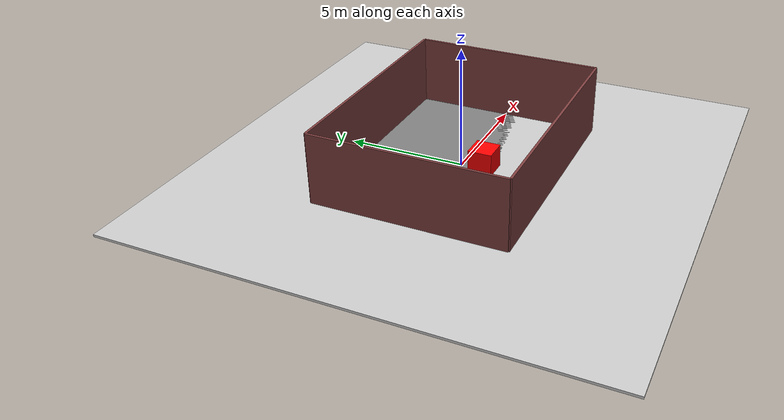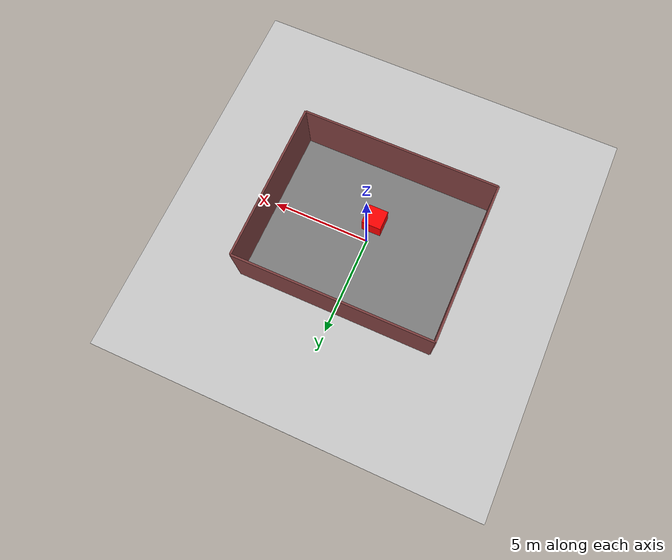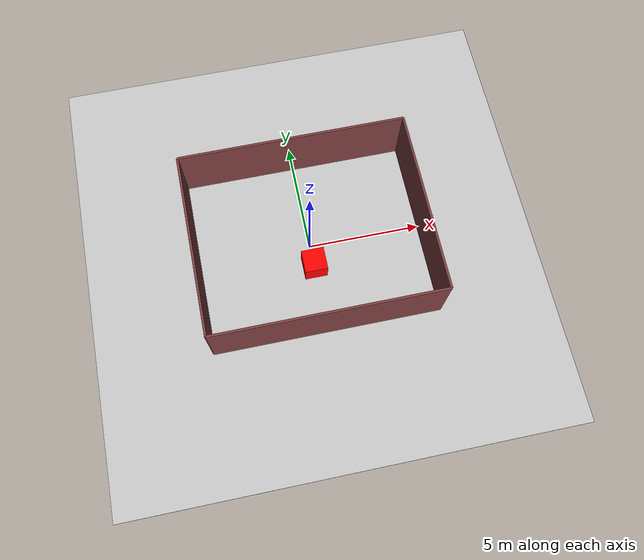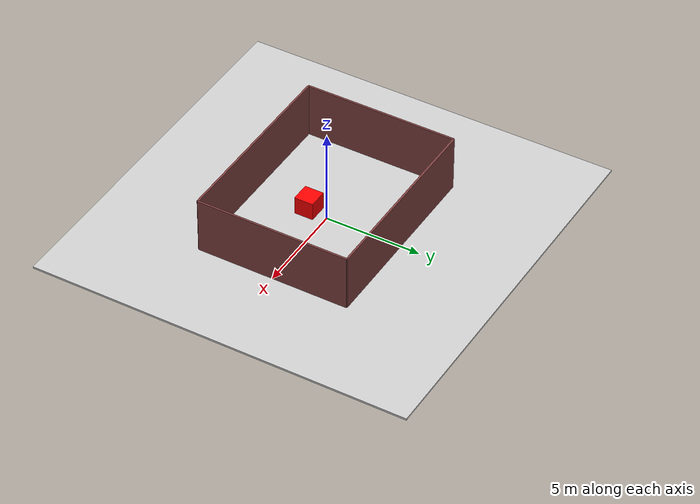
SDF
<?xml version="1.0" ?>
<!--
  Load several rendering sensors.
-->
<sdf version="1.6">
  <world name="lidar_sensor">
    <physics name="1ms" type="ignored">
      <max_step_size>0.001</max_step_size>
      <real_time_factor>1.0</real_time_factor>
    </physics>
    <plugin
      filename="gz-sim-physics-system"
      name="gz::sim::systems::Physics">
    </plugin>
    <plugin
      filename="gz-sim-sensors-system"
      name="gz::sim::systems::Sensors">
      <render_engine>ogre2</render_engine>
    </plugin>
    <plugin
      filename="gz-sim-user-commands-system"
      name="gz::sim::systems::UserCommands">
    </plugin>
    <plugin
      filename="gz-sim-scene-broadcaster-system"
      name="gz::sim::systems::SceneBroadcaster">
    </plugin>
    <plugin
      filename="ignition-gazebo-imu-system"
      name="ignition::gazebo::systems::Imu">
    </plugin>

    <gui fullscreen="0">

      <!-- 3D scene -->
      <plugin filename="MinimalScene" name="3D View">
        <gz-gui>
          <title>3D View</title>
          <property type="bool" key="showTitleBar">false</property>
          <property type="string" key="state">docked</property>
        </gz-gui>

        <engine>ogre2</engine>
        <scene>scene</scene>
        <ambient_light>0.4 0.4 0.4</ambient_light>
        <background_color>0.8 0.8 0.8</background_color>
        <camera_pose>-6 0 6 0 0.5 0</camera_pose>
      </plugin>

      <!-- Plugins that add functionality to the scene -->
      <plugin filename="EntityContextMenuPlugin" name="Entity context menu">
        <gz-gui>
          <property key="state" type="string">floating</property>
          <property key="width" type="double">5</property>
          <property key="height" type="double">5</property>
          <property key="showTitleBar" type="bool">false</property>
        </gz-gui>
      </plugin>
      <plugin filename="GzSceneManager" name="Scene Manager">
        <gz-gui>
          <property key="resizable" type="bool">false</property>
          <property key="width" type="double">5</property>
          <property key="height" type="double">5</property>
          <property key="state" type="string">floating</property>
          <property key="showTitleBar" type="bool">false</property>
        </gz-gui>
      </plugin>
      <plugin filename="InteractiveViewControl" name="Interactive view control">
        <gz-gui>
          <property key="resizable" type="bool">false</property>
          <property key="width" type="double">5</property>
          <property key="height" type="double">5</property>
          <property key="state" type="string">floating</property>
          <property key="showTitleBar" type="bool">false</property>
        </gz-gui>
      </plugin>
      <plugin filename="CameraTracking" name="Camera Tracking">
        <gz-gui>
          <property key="resizable" type="bool">false</property>
          <property key="width" type="double">5</property>
          <property key="height" type="double">5</property>
          <property key="state" type="string">floating</property>
          <property key="showTitleBar" type="bool">false</property>
        </gz-gui>
      </plugin>
      <!-- World control -->
      <plugin filename="WorldControl" name="World control">
        <gz-gui>
          <title>World control</title>
          <property type="bool" key="showTitleBar">false</property>
          <property type="bool" key="resizable">false</property>
          <property type="double" key="height">72</property>
          <property type="double" key="z">1</property>

          <property type="string" key="state">floating</property>
          <anchors target="3D View">
            <line own="left" target="left"/>
            <line own="bottom" target="bottom"/>
          </anchors>
        </gz-gui>

        <play_pause>true</play_pause>
        <step>true</step>
        <start_paused>true</start_paused>
        <use_event>true</use_event>

      </plugin>

      <!-- World statistics -->
      <plugin filename="WorldStats" name="World stats">
        <gz-gui>
          <title>World stats</title>
          <property type="bool" key="showTitleBar">false</property>
          <property type="bool" key="resizable">false</property>
          <property type="double" key="height">110</property>
          <property type="double" key="width">290</property>
          <property type="double" key="z">1</property>

          <property type="string" key="state">floating</property>
          <anchors target="3D View">
            <line own="right" target="right"/>
            <line own="bottom" target="bottom"/>
          </anchors>
        </gz-gui>

        <sim_time>true</sim_time>
        <real_time>true</real_time>
        <real_time_factor>true</real_time_factor>
        <iterations>true</iterations>
      </plugin>

      <!-- Inspector -->
      <plugin filename="ComponentInspector" name="Component inspector">
        <gz-gui>
          <property type="string" key="state">docked</property>
        </gz-gui>
      </plugin>

      <!-- Entity tree -->
      <plugin filename="EntityTree" name="Entity tree">
        <gz-gui>
          <property type="string" key="state">docked</property>
        </gz-gui>
      </plugin>

       <plugin filename="ImageDisplay" name="Image Display 3">
        <gz-gui>
          <title>RGBD: image</title>
          <property key="state" type="string">floating</property>
          <property type="double" key="width">350</property>
          <property type="double" key="height">315</property>
          <property type="double" key="y">320</property>
        </gz-gui>
        <topic>rgbd_camera/image</topic>
        <topic_picker>false</topic_picker>
      </plugin>
      <plugin filename="ImageDisplay" name="Image Display 3">
        <gz-gui>
          <title>Instance Segmented: image</title>
          <property key="state" type="string">floating</property>
          <property type="double" key="width">350</property>
          <property type="double" key="height">315</property>
          <property type="double" key="y">320</property>
        </gz-gui>
        <topic>/panoptic/colored_map</topic>
        <topic_picker>false</topic_picker>
      </plugin>
      <plugin filename="ImageDisplay" name="Image Display 3">
        <gz-gui>
          <title>RGBD: depth</title>
          <property key="state" type="string">floating</property>
          <property type="double" key="width">350</property>
          <property type="double" key="height">315</property>
          <property type="double" key="x">500</property>
          <property type="double" key="y">320</property>
        </gz-gui>
        <topic>rgbd_camera/depth_image</topic>
        <topic_picker>false</topic_picker>
      </plugin>

    </gui>

    <light type="directional" name="sun">
      <cast_shadows>true</cast_shadows>
      <pose>0 0 10 0 0 0</pose>
      <diffuse>0.8 0.8 0.8 1</diffuse>
      <specular>0.2 0.2 0.2 1</specular>
      <attenuation>
        <range>1000</range>
        <constant>0.9</constant>
        <linear>0.01</linear>
        <quadratic>0.001</quadratic>
      </attenuation>
      <direction>-0.5 0.1 -0.9</direction>
    </light>

    <model name="ground_plane">
      <static>true</static>
      <link name="link">
        <collision name="collision">
          <geometry>
            <box>
              <size>20 20 0.1</size>
            </box>
          </geometry>
        </collision>
        <visual name="visual">
          <geometry>
            <box>
              <size>20 20 0.1</size>
            </box>
          </geometry>
          <material>
            <ambient>0.8 0.8 0.8 1</ambient>
            <diffuse>0.8 0.8 0.8 1</diffuse>
            <specular>0.8 0.8 0.8 1</specular>
          </material>
        </visual>
      </link>
    </model>

    <model name="box">
      <pose>0 -1 0.5 0 0 0</pose>
      <link name="box_link">
        <inertial>
          <inertia>
            <ixx>1</ixx>
            <ixy>0</ixy>
            <ixz>0</ixz>
            <iyy>1</iyy>
            <iyz>0</iyz>
            <izz>1</izz>
          </inertia>
          <mass>1.0</mass>
        </inertial>
        <collision name="box_collision">
          <geometry>
            <box>
              <size>1 1 1</size>
            </box>
          </geometry>
        </collision>

        <visual name="box_visual">
          <geometry>
            <box>
              <size>1 1 1</size>
            </box>
          </geometry>
          <material>
            <ambient>1 0 0 1</ambient>
            <diffuse>1 0 0 1</diffuse>
            <specular>1 0 0 1</specular>
          </material>
        </visual>
      </link>
    </model>

    <model name="room">
      <static>true</static>
      <physics name="1ms" type="ignored">
            <max_step_size>0.001</max_step_size>
            <real_time_factor>1.0</real_time_factor>
      </physics>
      <plugin
            filename="libignition-gazebo-physics-system.so"
            name="ignition::gazebo::systems::Physics">
        </plugin>
      <!-- Create the floor -->
      <link name="floor">
        <collision name="floor_collision">
          <geometry>
            <box>
              <size>10 8 0.1</size> <!-- Floor dimensions -->
            </box>
          </geometry>
        </collision>
        <visual name="floor_visual">
          <geometry>
            <box>
              <size>10 8 0.1</size> <!-- Floor dimensions -->
            </box>
          </geometry>
          <material>
            <ambient>0.5 0.5 0.5 1</ambient> <!-- Gray floor -->
            <diffuse>0.5 0.5 0.5 1</diffuse>
          </material>
        </visual>
      </link>

      <!-- Create the north wall -->
      <link name="wall_north">
        <pose>0 4 1.5 0 0 0</pose> <!-- Positioning the north wall -->
        <collision name="north_collision">
          <geometry>
            <box>
              <size>10 0.1 3</size> <!-- Width and height -->
            </box>
          </geometry>
        </collision>
        <visual name="north_visual">
          <geometry>
            <box>
              <size>10 0.1 3</size>
            </box>
          </geometry>
          <material>
            <ambient>0.5 0.25 0.25 1</ambient> <!-- Brown color -->
            <diffuse>0.5 0.25 0.25 1</diffuse>
          </material>
        </visual>
        <sensor name='sensor_contact' type='contact'>
            <contact>
                <collision>collision</collision>
            </contact>
        </sensor>
      </link>

      <!-- Create the north wall -->
      <link name="wall_south">
        <pose>0 -4 1.5 0 0 0</pose> <!-- Positioning the north wall -->
        <collision name="north_collision">
          <geometry>
            <box>
              <size>10 0.1 3</size> <!-- Width and height -->
            </box>
          </geometry>
        </collision>
        <visual name="north_south">
          <geometry>
            <box>
              <size>10 0.1 3</size>
            </box>
          </geometry>
          <material>
            <ambient>0.5 0.25 0.25 1</ambient> <!-- Brown color -->
            <diffuse>0.5 0.25 0.25 1</diffuse>
          </material>
        </visual>
                <sensor name='sensor_contact' type='contact'>
            <contact>
                <collision>collision</collision>
            </contact>
        </sensor>
      </link>

    <!-- Create the west wall -->
      <link name="wall_west">
        <pose>5 0 1.5  0 0 0</pose> <!-- Positioning the west wall -->
        <collision name="west_collision">
          <geometry>
            <box>
              <size>0.1 8 3</size> <!-- Width and height -->
            </box>
          </geometry>
        </collision>
        <visual name="west_visual">
          <geometry>
            <box>
              <size>0.1 8 3</size>
            </box>
          </geometry>
          <material>
            <ambient>0.5 0.25 0.25 1</ambient> <!-- Brown color -->
            <diffuse>0.5 0.25 0.25 1</diffuse>
          </material>
        </visual>
        <sensor name='sensor_contact' type='contact'>
            <contact>
                <collision>collision</collision>
            </contact>
        </sensor>
      </link>

    <!-- Create the east wall -->
      <link name="wall_east">
        <pose>-5 0 1.5  0 0 0</pose> <!-- Positioning the east wall -->
        <collision name="west_collision">
          <geometry>
            <box>
              <size>0.1 8 3</size> <!-- Width and height -->
            </box>
          </geometry>
        </collision>
        <visual name="east_visual">
          <geometry>
            <box>
              <size>0.1 8 3</size>
            </box>
          </geometry>
          <material>
            <ambient>0.5 0.25 0.25 1</ambient> <!-- Brown color -->
            <diffuse>0.5 0.25 0.25 1</diffuse>
          </material>
          <sensor name='sensor_contact' type='contact'>
            <contact>
                <collision>collision</collision>
            </contact>
          </sensor>
        </visual>
      </link>
    </model>

  </world>
</sdf>
